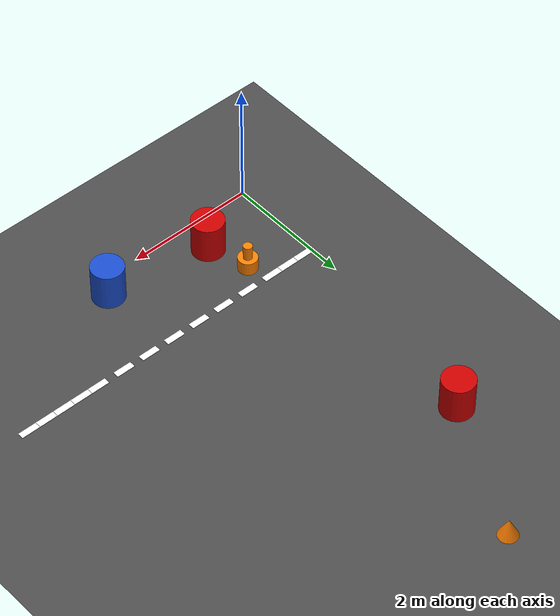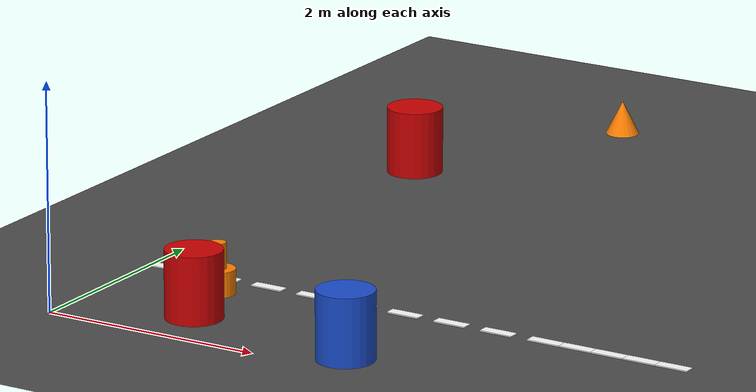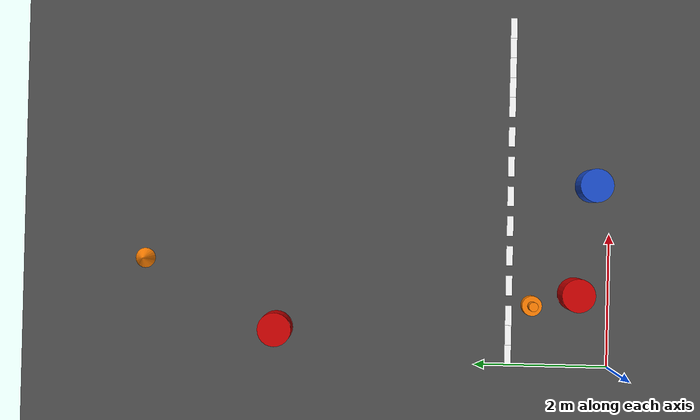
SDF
<sdf version="1.10">
 <world name="igvc_autonav">
  <model name="ground_plane">
   <static>true</static>
   <link name="link">
    <collision name="collision">
     <geometry><plane><normal>0 0 1</normal><size>60 60</size></plane></geometry>
     <surface><friction><ode><mu>0.80000000000000004</mu><mu2>0.80000000000000004</mu2></ode></friction></surface>
    </collision>
    <visual name="visual">
     <geometry><plane><normal>0 0 1</normal><size>60 60</size></plane></geometry>
     <material>
      <ambient>0.25 0.25 0.25 1</ambient>
      <diffuse>0.300000012 0.300000012 0.300000012 1</diffuse>
      <specular>0.100000001 0.100000001 0.100000001 1</specular>
     </material>
    </visual>
    <inertial>
     <mass>1</mass>
     <inertia><ixx>1</ixx><ixy>0</ixy><ixz>0</ixz><iyy>1</iyy><iyz>0</iyz><izz>1</izz></inertia>
    </inertial>
   </link>
  </model>
  <model name="lane_inner_17">
   <static>true</static>
   <pose>0.14999999999999999 1.5 0.01 0 0 0</pose>
   <link name="link">
    <visual name="visual">
     <geometry><box><size>0.29999999999999999 0.10000000000000001 0.01</size></box></geometry>
     <material><ambient>1 1 1 1</ambient><diffuse>1 1 1 1</diffuse><emissive>1 1 1 1</emissive></material>
    </visual>
    <inertial>
     <mass>1</mass>
     <inertia><ixx>1</ixx><ixy>0</ixy><ixz>0</ixz><iyy>1</iyy><iyz>0</iyz><izz>1</izz></inertia>
    </inertial>
   </link>
  </model>
  <model name="lane_inner_18">
   <static>true</static>
   <pose>0.45000000000000001 1.5 0.01 0 0 0</pose>
   <link name="link">
    <visual name="visual">
     <geometry><box><size>0.29999999999999999 0.10000000000000001 0.01</size></box></geometry>
     <material><ambient>1 1 1 1</ambient><diffuse>1 1 1 1</diffuse><emissive>1 1 1 1</emissive></material>
    </visual>
    <inertial>
     <mass>1</mass>
     <inertia><ixx>1</ixx><ixy>0</ixy><ixz>0</ixz><iyy>1</iyy><iyz>0</iyz><izz>1</izz></inertia>
    </inertial>
   </link>
  </model>
  <model name="lane_inner_19">
   <static>true</static>
   <pose>0.75 1.5 0.01 0 0 0</pose>
   <link name="link">
    <visual name="visual">
     <geometry><box><size>0.29999999999999999 0.10000000000000001 0.01</size></box></geometry>
     <material><ambient>1 1 1 1</ambient><diffuse>1 1 1 1</diffuse><emissive>1 1 1 1</emissive></material>
    </visual>
    <inertial>
     <mass>1</mass>
     <inertia><ixx>1</ixx><ixy>0</ixy><ixz>0</ixz><iyy>1</iyy><iyz>0</iyz><izz>1</izz></inertia>
    </inertial>
   </link>
  </model>
  <model name="lane_inner_20">
   <static>true</static>
   <pose>1.2 1.5 0.01 0 0 0</pose>
   <link name="link">
    <visual name="visual">
     <geometry><box><size>0.29999999999999999 0.10000000000000001 0.01</size></box></geometry>
     <material><ambient>1 1 1 1</ambient><diffuse>1 1 1 1</diffuse><emissive>1 1 1 1</emissive></material>
    </visual>
    <inertial>
     <mass>1</mass>
     <inertia><ixx>1</ixx><ixy>0</ixy><ixz>0</ixz><iyy>1</iyy><iyz>0</iyz><izz>1</izz></inertia>
    </inertial>
   </link>
  </model>
  <model name="lane_inner_21">
   <static>true</static>
   <pose>1.6499999999999999 1.5 0.01 0 0 0</pose>
   <link name="link">
    <visual name="visual">
     <geometry><box><size>0.29999999999999999 0.10000000000000001 0.01</size></box></geometry>
     <material><ambient>1 1 1 1</ambient><diffuse>1 1 1 1</diffuse><emissive>1 1 1 1</emissive></material>
    </visual>
    <inertial>
     <mass>1</mass>
     <inertia><ixx>1</ixx><ixy>0</ixy><ixz>0</ixz><iyy>1</iyy><iyz>0</iyz><izz>1</izz></inertia>
    </inertial>
   </link>
  </model>
  <model name="lane_inner_22">
   <static>true</static>
   <pose>2.1000000000000001 1.5 0.01 0 0 0</pose>
   <link name="link">
    <visual name="visual">
     <geometry><box><size>0.29999999999999999 0.10000000000000001 0.01</size></box></geometry>
     <material><ambient>1 1 1 1</ambient><diffuse>1 1 1 1</diffuse><emissive>1 1 1 1</emissive></material>
    </visual>
    <inertial>
     <mass>1</mass>
     <inertia><ixx>1</ixx><ixy>0</ixy><ixz>0</ixz><iyy>1</iyy><iyz>0</iyz><izz>1</izz></inertia>
    </inertial>
   </link>
  </model>
  <model name="lane_inner_23">
   <static>true</static>
   <pose>2.5499999999999998 1.5 0.01 0 0 0</pose>
   <link name="link">
    <visual name="visual">
     <geometry><box><size>0.29999999999999999 0.10000000000000001 0.01</size></box></geometry>
     <material><ambient>1 1 1 1</ambient><diffuse>1 1 1 1</diffuse><emissive>1 1 1 1</emissive></material>
    </visual>
    <inertial>
     <mass>1</mass>
     <inertia><ixx>1</ixx><ixy>0</ixy><ixz>0</ixz><iyy>1</iyy><iyz>0</iyz><izz>1</izz></inertia>
    </inertial>
   </link>
  </model>
  <model name="lane_inner_24">
   <static>true</static>
   <pose>3 1.5 0.01 0 0 0</pose>
   <link name="link">
    <visual name="visual">
     <geometry><box><size>0.29999999999999999 0.10000000000000001 0.01</size></box></geometry>
     <material><ambient>1 1 1 1</ambient><diffuse>1 1 1 1</diffuse><emissive>1 1 1 1</emissive></material>
    </visual>
    <inertial>
     <mass>1</mass>
     <inertia><ixx>1</ixx><ixy>0</ixy><ixz>0</ixz><iyy>1</iyy><iyz>0</iyz><izz>1</izz></inertia>
    </inertial>
   </link>
  </model>
  <model name="lane_inner_25">
   <static>true</static>
   <pose>3.4500000000000002 1.5 0.01 0 0 0</pose>
   <link name="link">
    <visual name="visual">
     <geometry><box><size>0.29999999999999999 0.10000000000000001 0.01</size></box></geometry>
     <material><ambient>1 1 1 1</ambient><diffuse>1 1 1 1</diffuse><emissive>1 1 1 1</emissive></material>
    </visual>
    <inertial>
     <mass>1</mass>
     <inertia><ixx>1</ixx><ixy>0</ixy><ixz>0</ixz><iyy>1</iyy><iyz>0</iyz><izz>1</izz></inertia>
    </inertial>
   </link>
  </model>
  <model name="lane_inner_26">
   <static>true</static>
   <pose>3.8999999999999999 1.5 0.01 0 0 0</pose>
   <link name="link">
    <visual name="visual">
     <geometry><box><size>0.29999999999999999 0.10000000000000001 0.01</size></box></geometry>
     <material><ambient>1 1 1 1</ambient><diffuse>1 1 1 1</diffuse><emissive>1 1 1 1</emissive></material>
    </visual>
    <inertial>
     <mass>1</mass>
     <inertia><ixx>1</ixx><ixy>0</ixy><ixz>0</ixz><iyy>1</iyy><iyz>0</iyz><izz>1</izz></inertia>
    </inertial>
   </link>
  </model>
  <model name="lane_inner_27">
   <static>true</static>
   <pose>4.2000000000000002 1.5 0.01 0 0 0</pose>
   <link name="link">
    <visual name="visual">
     <geometry><box><size>0.29999999999999999 0.10000000000000001 0.01</size></box></geometry>
     <material><ambient>1 1 1 1</ambient><diffuse>1 1 1 1</diffuse><emissive>1 1 1 1</emissive></material>
    </visual>
    <inertial>
     <mass>1</mass>
     <inertia><ixx>1</ixx><ixy>0</ixy><ixz>0</ixz><iyy>1</iyy><iyz>0</iyz><izz>1</izz></inertia>
    </inertial>
   </link>
  </model>
  <model name="lane_inner_28">
   <static>true</static>
   <pose>4.5 1.5 0.01 0 0 0</pose>
   <link name="link">
    <visual name="visual">
     <geometry><box><size>0.29999999999999999 0.10000000000000001 0.01</size></box></geometry>
     <material><ambient>1 1 1 1</ambient><diffuse>1 1 1 1</diffuse><emissive>1 1 1 1</emissive></material>
    </visual>
    <inertial>
     <mass>1</mass>
     <inertia><ixx>1</ixx><ixy>0</ixy><ixz>0</ixz><iyy>1</iyy><iyz>0</iyz><izz>1</izz></inertia>
    </inertial>
   </link>
  </model>
  <model name="lane_inner_29">
   <static>true</static>
   <pose>4.7999999999999998 1.5 0.01 0 0 0</pose>
   <link name="link">
    <visual name="visual">
     <geometry><box><size>0.29999999999999999 0.10000000000000001 0.01</size></box></geometry>
     <material><ambient>1 1 1 1</ambient><diffuse>1 1 1 1</diffuse><emissive>1 1 1 1</emissive></material>
    </visual>
    <inertial>
     <mass>1</mass>
     <inertia><ixx>1</ixx><ixy>0</ixy><ixz>0</ixz><iyy>1</iyy><iyz>0</iyz><izz>1</izz></inertia>
    </inertial>
   </link>
  </model>
  <model name="lane_inner_30">
   <static>true</static>
   <pose>5.0999999999999996 1.5 0.01 0 0 0</pose>
   <link name="link">
    <visual name="visual">
     <geometry><box><size>0.29999999999999999 0.10000000000000001 0.01</size></box></geometry>
     <material><ambient>1 1 1 1</ambient><diffuse>1 1 1 1</diffuse><emissive>1 1 1 1</emissive></material>
    </visual>
    <inertial>
     <mass>1</mass>
     <inertia><ixx>1</ixx><ixy>0</ixy><ixz>0</ixz><iyy>1</iyy><iyz>0</iyz><izz>1</izz></inertia>
    </inertial>
   </link>
  </model>
  <model name="cone_wp3_1">
   <static>true</static>
   <link name="link">
    <visual name="visual">
     <geometry><cone><radius>0.14999999999999999</radius><length>0.29999999999999999</length></cone></geometry>
     <material><ambient>1 0.5 0 1</ambient><diffuse>1 0.5 0 1</diffuse></material>
    </visual>
    <collision name="collision">
     <geometry>
      <cylinder><radius>0.14999999999999999</radius><length>0.29999999999999999</length></cylinder>
     </geometry>
    </collision>
    <inertial>
     <mass>1</mass>
     <inertia><ixx>1</ixx><ixy>0</ixy><ixz>0</ixz><iyy>1</iyy><iyz>0</iyz><izz>1</izz></inertia>
    </inertial>
   </link>
   <pose>1.5 7 0.14999999999999999 0 0 0</pose>
  </model>
  <model name="barrel_wp3_1">
   <static>true</static>
   <link name="link">
    <visual name="visual">
     <geometry><cylinder><radius>0.25</radius><length>0.59999999999999998</length></cylinder></geometry>
     <material><ambient>0.800000012 0 0 1</ambient><diffuse>0.800000012 0 0 1</diffuse></material>
    </visual>
    <collision name="collision">
     <geometry><cylinder><radius>0.25</radius><length>0.59999999999999998</length></cylinder></geometry>
    </collision>
    <inertial>
     <mass>1</mass>
     <inertia><ixx>1</ixx><ixy>0</ixy><ixz>0</ixz><iyy>1</iyy><iyz>0</iyz><izz>1</izz></inertia>
    </inertial>
   </link>
   <pose>0.5 5 0.29999999999999999 0 0 0</pose>
  </model>
  <model name="barrel_nml_1_2">
   <static>true</static>
   <link name="link">
    <collision name="collision">
     <geometry><cylinder><radius>0.25</radius><length>0.59999999999999998</length></cylinder></geometry>
     <pose>0 0 0.29999999999999999 0 0 0</pose>
    </collision>
    <visual name="visual">
     <geometry><cylinder><radius>0.25</radius><length>0.59999999999999998</length></cylinder></geometry>
     <pose>0 0 0.29999999999999999 0 0 0</pose>
     <material>
      <ambient>0.100000001 0.300000012 0.800000012 1</ambient>
      <diffuse>0.100000001 0.300000012 0.800000012 1</diffuse>
      <specular>0.300000012 0.300000012 0.300000012 1</specular>
     </material>
    </visual>
    <inertial>
     <mass>1</mass>
     <inertia><ixx>1</ixx><ixy>0</ixy><ixz>0</ixz><iyy>1</iyy><iyz>0</iyz><izz>1</izz></inertia>
    </inertial>
   </link>
   <pose>2.7287695407867432 0.28131899237632751 0 0 0 0</pose>
  </model>
  <model name="cone_3_1">
   <static>true</static>
   <link name="link">
    <collision name="collision_base">
     <geometry><cylinder><radius>0.14999999999999999</radius><length>0.22</length></cylinder></geometry>
     <pose>0 0 0.11 0 0 0</pose>
    </collision>
    <visual name="visual_base">
     <geometry><cylinder><radius>0.14999999999999999</radius><length>0.22</length></cylinder></geometry>
     <pose>0 0 0.11 0 0 0</pose>
     <material>
      <ambient>1 0.5 0 1</ambient>
      <diffuse>1 0.5 0 1</diffuse>
      <specular>0.300000012 0.300000012 0.300000012 1</specular>
     </material>
    </visual>
    <collision name="collision_top">
     <geometry>
      <cylinder><radius>0.070000000000000007</radius><length>0.23000000000000001</length></cylinder>
     </geometry>
     <pose>0 0 0.33500000000000002 0 0 0</pose>
    </collision>
    <visual name="visual_top">
     <geometry>
      <cylinder><radius>0.070000000000000007</radius><length>0.23000000000000001</length></cylinder>
     </geometry>
     <pose>0 0 0.33500000000000002 0 0 0</pose>
     <material>
      <ambient>1 0.5 0 1</ambient>
      <diffuse>1 0.5 0 1</diffuse>
      <specular>0.300000012 0.300000012 0.300000012 1</specular>
     </material>
    </visual>
    <inertial>
     <mass>1</mass>
     <inertia><ixx>1</ixx><ixy>0</ixy><ixz>0</ixz><iyy>1</iyy><iyz>0</iyz><izz>1</izz></inertia>
    </inertial>
   </link>
   <pose>0.910582 1.1676200000000001 0 0 0 0</pose>
  </model>
  <model name="barrel_wp3_1_1">
   <static>true</static>
   <link name="link">
    <visual name="visual">
     <geometry><cylinder><radius>0.25</radius><length>0.59999999999999998</length></cylinder></geometry>
     <material><ambient>0.800000012 0 0 1</ambient><diffuse>0.800000012 0 0 1</diffuse></material>
    </visual>
    <collision name="collision">
     <geometry><cylinder><radius>0.25</radius><length>0.59999999999999998</length></cylinder></geometry>
    </collision>
    <inertial>
     <mass>1</mass>
     <inertia><ixx>1</ixx><ixy>0</ixy><ixz>0</ixz><iyy>1</iyy><iyz>0</iyz><izz>1</izz></inertia>
    </inertial>
   </link>
   <pose>1.0955300331115723 0.52010804414749146 0.30000001192092896 0 0 0</pose>
  </model>
 </world>
</sdf>
